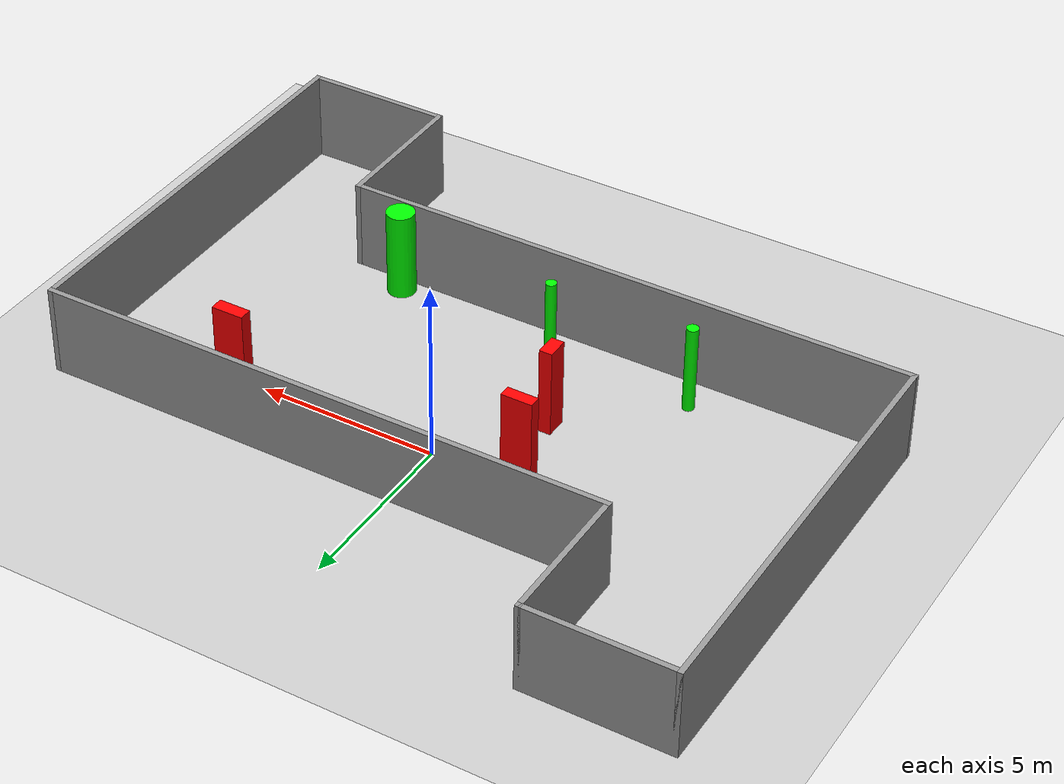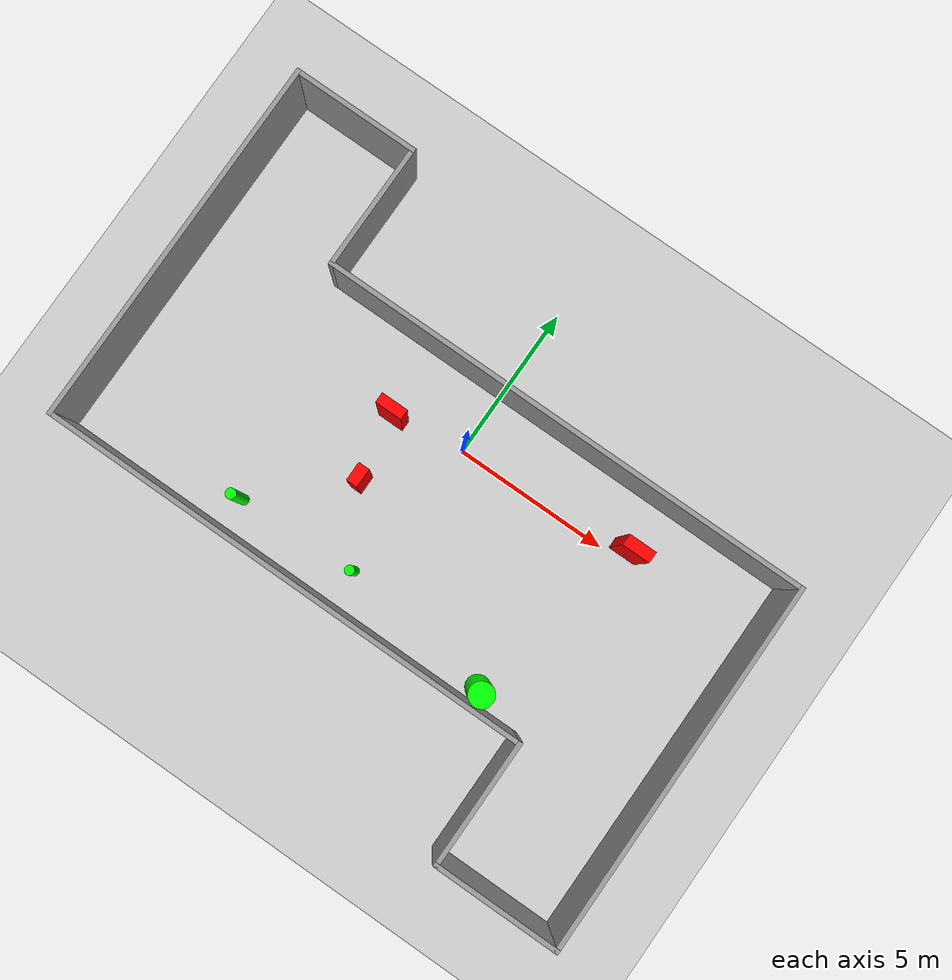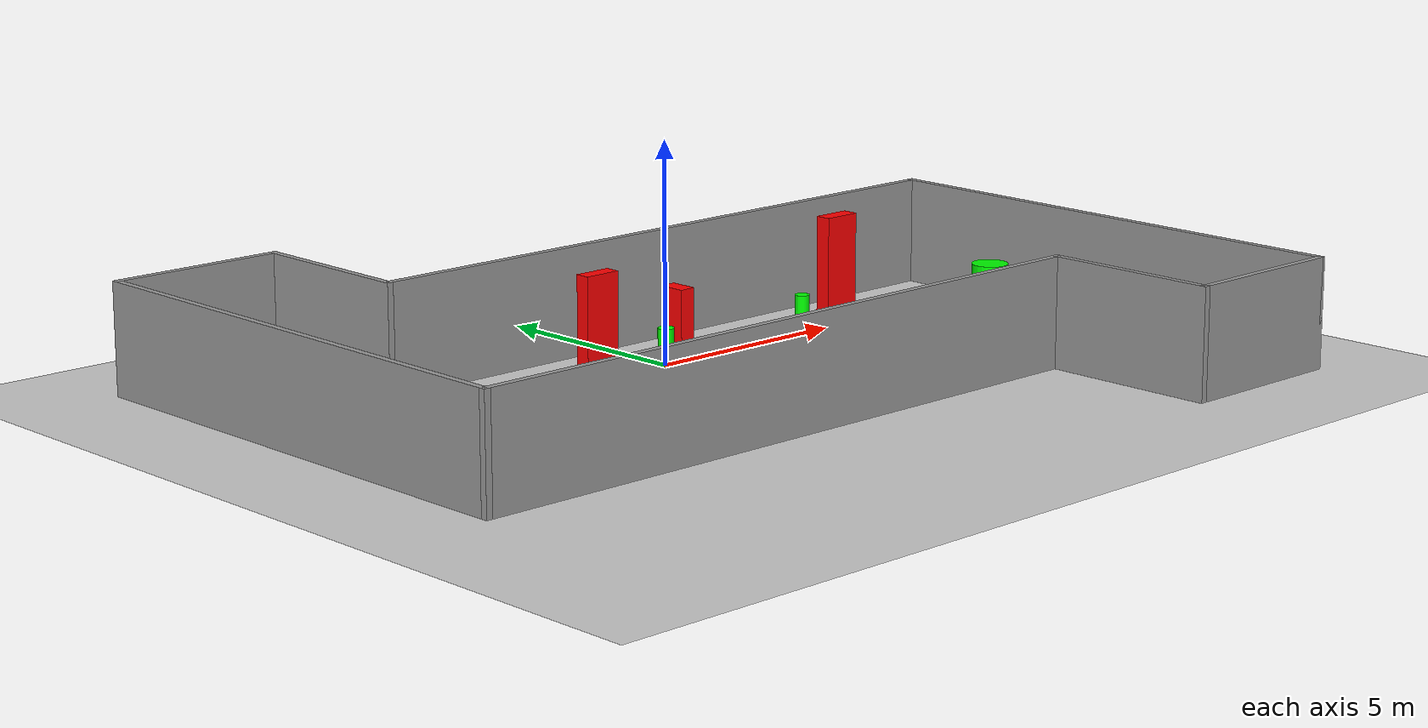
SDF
<sdf version="1.7">
 <world name="default">
  <light name="sun" type="directional">
   <pose>0 0 10 0 -0 0</pose>
   <diffuse>0.8 0.8 0.8 1</diffuse>
   <specular>0.2 0.2 0.2 1</specular>
   <attenuation>
    <range>1000</range>
    <constant>0.9</constant>
    <linear>0.01</linear>
    <quadratic>0.001</quadratic>
   </attenuation>
   <direction>-0.5 0.1 -0.9</direction>
   <spot><inner_angle>0</inner_angle><outer_angle>0</outer_angle><falloff>0</falloff></spot>
  </light>
  <model name="ground_plane">
   <static>1</static>
   <link name="link">
    <collision name="collision">
     <geometry><plane><normal>0 0 1</normal><size>100 100</size></plane></geometry>
     <surface>
      <contact><collide_bitmask>65535</collide_bitmask></contact>
      <friction><ode><mu>100</mu><mu2>50</mu2></ode></friction>
     </surface>
    </collision>
    <visual name="visual">
     <cast_shadows>0</cast_shadows>
     <geometry><plane><normal>0 0 1</normal><size>100 100</size></plane></geometry>
     <material>
      <script><uri>file://media/materials/scripts/gazebo.material</uri><name>Gazebo/Grey</name></script>
     </material>
    </visual>
   </link>
  </model>
  <gravity>0 0 -9.8</gravity>
  <magnetic_field>6e-06 2.3e-05 -4.2e-05</magnetic_field>
  <atmosphere type="adiabatic"/>
  <physics type="ode">
   <max_step_size>0.001</max_step_size>
   <real_time_factor>1</real_time_factor>
   <real_time_update_rate>1000</real_time_update_rate>
  </physics>
  <scene><ambient>0.4 0.4 0.4 1</ambient><background>0.7 0.7 0.7 1</background><shadows>1</shadows></scene>
  <spherical_coordinates>
   <surface_model>EARTH_WGS84</surface_model>
   <latitude_deg>0</latitude_deg>
   <longitude_deg>0</longitude_deg>
   <elevation>0</elevation>
   <heading_deg>0</heading_deg>
  </spherical_coordinates>
  <model name="my_base_walls">
   <link name="Wall_13">
    <collision name="Wall_13_Collision">
     <geometry><box><size>12.15 0.15 2.5</size></box></geometry>
     <pose>0 0 1.25 0 -0 0</pose>
    </collision>
    <visual name="Wall_13_Visual">
     <pose>0 0 1.25 0 -0 0</pose>
     <geometry><box><size>12.15 0.15 2.5</size></box></geometry>
     <material>
      <script><uri>file://media/materials/scripts/gazebo.material</uri><name>Gazebo/Grey</name></script>
      <ambient>1 1 1 1</ambient>
     </material>
     <meta><layer>0</layer></meta>
    </visual>
    <pose>10 -2 0 0 -0 1.5708</pose>
   </link>
   <link name="Wall_15">
    <collision name="Wall_15_Collision">
     <geometry><box><size>16.15 0.15 2.5</size></box></geometry>
     <pose>0 0 1.25 0 -0 0</pose>
    </collision>
    <visual name="Wall_15_Visual">
     <pose>0 0 1.25 0 -0 0</pose>
     <geometry><box><size>16.15 0.15 2.5</size></box></geometry>
     <material>
      <script><uri>file://media/materials/scripts/gazebo.material</uri><name>Gazebo/Grey</name></script>
      <ambient>1 1 1 1</ambient>
     </material>
     <meta><layer>0</layer></meta>
    </visual>
    <pose>2 4 0 0 -0 3.14159</pose>
   </link>
   <link name="Wall_17">
    <collision name="Wall_17_Collision">
     <geometry><box><size>4.15 0.15 2.5</size></box></geometry>
     <pose>0 0 1.25 0 -0 0</pose>
    </collision>
    <visual name="Wall_17_Visual">
     <pose>0 0 1.25 0 -0 0</pose>
     <geometry><box><size>4.15 0.15 2.5</size></box></geometry>
     <material>
      <script><uri>file://media/materials/scripts/gazebo.material</uri><name>Gazebo/Grey</name></script>
      <ambient>1 1 1 1</ambient>
     </material>
     <meta><layer>0</layer></meta>
    </visual>
    <pose>6 -6 0 0 -0 -1.5708</pose>
   </link>
   <link name="Wall_19">
    <collision name="Wall_19_Collision">
     <geometry><box><size>12.15 0.15 2.5</size></box></geometry>
     <pose>0 0 1.25 0 -0 0</pose>
    </collision>
    <visual name="Wall_19_Visual">
     <pose>0 0 1.25 0 -0 0</pose>
     <geometry><box><size>12.15 0.15 2.5</size></box></geometry>
     <material>
      <script><uri>file://media/materials/scripts/gazebo.material</uri><name>Gazebo/Grey</name></script>
      <ambient>1 1 1 1</ambient>
     </material>
     <meta><layer>0</layer></meta>
    </visual>
    <pose>-10 2 0 0 -0 1.5708</pose>
   </link>
   <link name="Wall_21">
    <collision name="Wall_21_Collision">
     <geometry><box><size>4.15 0.15 2.5</size></box></geometry>
     <pose>0 0 1.25 0 -0 0</pose>
    </collision>
    <visual name="Wall_21_Visual">
     <pose>0 0 1.25 0 -0 0</pose>
     <geometry><box><size>4.15 0.15 2.5</size></box></geometry>
     <material>
      <script><uri>file://media/materials/scripts/gazebo.material</uri><name>Gazebo/Grey</name></script>
      <ambient>1 1 1 1</ambient>
     </material>
     <meta><layer>0</layer></meta>
    </visual>
    <pose>-8 8 0 0 -0 0</pose>
   </link>
   <link name="Wall_23">
    <collision name="Wall_23_Collision">
     <geometry><box><size>4.15 0.15 2.5</size></box></geometry>
     <pose>0 0 1.25 0 -0 0</pose>
    </collision>
    <visual name="Wall_23_Visual">
     <pose>0 0 1.25 0 -0 0</pose>
     <geometry><box><size>4.15 0.15 2.5</size></box></geometry>
     <material>
      <script><uri>file://media/materials/scripts/gazebo.material</uri><name>Gazebo/Grey</name></script>
      <ambient>1 1 1 1</ambient>
     </material>
     <meta><layer>0</layer></meta>
    </visual>
    <pose>-6 6 0 0 -0 -1.5708</pose>
   </link>
   <link name="Wall_25">
    <collision name="Wall_25_Collision">
     <geometry><box><size>4.15 0.15 2.5</size></box></geometry>
     <pose>0 0 1.25 0 -0 0</pose>
    </collision>
    <visual name="Wall_25_Visual">
     <pose>0 0 1.25 0 -0 0</pose>
     <geometry><box><size>4.15 0.15 2.5</size></box></geometry>
     <material>
      <script><uri>file://media/materials/scripts/gazebo.material</uri><name>Gazebo/Grey</name></script>
      <ambient>1 1 1 1</ambient>
     </material>
     <meta><layer>0</layer></meta>
    </visual>
    <pose>8 -8 0 0 -0 0</pose>
   </link>
   <link name="Wall_9">
    <collision name="Wall_9_Collision">
     <geometry><box><size>16.15 0.15 2.5</size></box></geometry>
     <pose>0 0 1.25 0 -0 0</pose>
    </collision>
    <visual name="Wall_9_Visual">
     <pose>0 0 1.25 0 -0 0</pose>
     <geometry><box><size>16.15 0.15 2.5</size></box></geometry>
     <material>
      <script><uri>file://media/materials/scripts/gazebo.material</uri><name>Gazebo/Grey</name></script>
      <ambient>1 1 1 1</ambient>
     </material>
     <meta><layer>0</layer></meta>
    </visual>
    <pose>-2 -4 0 0 -0 3.14159</pose>
   </link>
   <static>1</static>
   <pose>-0 -2 0 0 -0 0</pose>
  </model>
  <model name="cylinder1">
   <static>1</static>
   <link name="link">
    <inertial>
     <mass>1</mass>
     <inertia><ixx>0.5</ixx><ixy>0</ixy><ixz>0</ixz><iyy>0.5</iyy><iyz>0</iyz><izz>1</izz></inertia>
    </inertial>
    <collision name="collision">
     <geometry><cylinder><radius>0.15000144860122047</radius><length>2.5</length></cylinder></geometry>
    </collision>
    <visual name="visual">
     <geometry><cylinder><radius>0.15000144860122047</radius><length>2.5</length></cylinder></geometry>
     <material>
      <ambient>0 1 0 1</ambient>
      <diffuse>0 1 0 1</diffuse>
      <specular>0.1 0.1 0.1 1</specular>
      <emissive>0 0 0 0</emissive>
     </material>
    </visual>
   </link>
   <pose>-0.5846498098671757 -4.783121618251364 1.25 0 0 0</pose>
  </model>
  <model name="cylinder2">
   <static>1</static>
   <link name="link">
    <inertial>
     <mass>1</mass>
     <inertia><ixx>0.5</ixx><ixy>0</ixy><ixz>0</ixz><iyy>0.5</iyy><iyz>0</iyz><izz>1</izz></inertia>
    </inertial>
    <collision name="collision">
     <geometry><cylinder><radius>0.3930701953225769</radius><length>2.5</length></cylinder></geometry>
    </collision>
    <visual name="visual">
     <geometry><cylinder><radius>0.3930701953225769</radius><length>2.5</length></cylinder></geometry>
     <material>
      <ambient>0 1 0 1</ambient>
      <diffuse>0 1 0 1</diffuse>
      <specular>0.1 0.1 0.1 1</specular>
      <emissive>0 0 0 0</emissive>
     </material>
    </visual>
   </link>
   <pose>4.383494219823717 -5.500628155480678 1.25 0 0 0</pose>
  </model>
  <model name="cylinder3">
   <static>1</static>
   <link name="link">
    <inertial>
     <mass>1</mass>
     <inertia><ixx>0.5</ixx><ixy>0</ixy><ixz>0</ixz><iyy>0.5</iyy><iyz>0</iyz><izz>1</izz></inertia>
    </inertial>
    <collision name="collision">
     <geometry><cylinder><radius>0.16388926388035518</radius><length>2.5</length></cylinder></geometry>
    </collision>
    <visual name="visual">
     <geometry><cylinder><radius>0.16388926388035518</radius><length>2.5</length></cylinder></geometry>
     <material>
      <ambient>0 1 0 1</ambient>
      <diffuse>0 1 0 1</diffuse>
      <specular>0.1 0.1 0.1 1</specular>
      <emissive>0 0 0 0</emissive>
     </material>
    </visual>
   </link>
   <pose>-4.52787598942999 -4.937694399466494 1.25 0 0 0</pose>
  </model>
  <model name="box1">
   <static>1</static>
   <link name="link">
    <inertial>
     <mass>1</mass>
     <inertia><ixx>0.083</ixx><ixy>0</ixy><ixz>0</ixz><iyy>0.083</iyy><iyz>0</iyz><izz>0.083</izz></inertia>
    </inertial>
    <collision name="collision">
     <geometry><box><size>0.3582241988612805 0.6124911021830357 2.5</size></box></geometry>
    </collision>
    <visual name="visual">
     <geometry><box><size>0.3582241988612805 0.6124911021830357 2.5</size></box></geometry>
     <material>
      <ambient>1 0 0 1</ambient>
      <diffuse>1 0 0 1</diffuse>
      <specular>0.1 0.1 0.1 1</specular>
      <emissive>0 0 0 0</emissive>
     </material>
    </visual>
    <sensor name="my_contact" type="contact">
     <contact><collision>box_collision</collision><topic>__default_topic__</topic></contact>
    </sensor>
   </link>
   <pose>-1.929614837460564 -2.478740126543344 1.25 0 0 0</pose>
  </model>
  <model name="box2">
   <static>1</static>
   <link name="link">
    <inertial>
     <mass>1</mass>
     <inertia><ixx>0.083</ixx><ixy>0</ixy><ixz>0</ixz><iyy>0.083</iyy><iyz>0</iyz><izz>0.083</izz></inertia>
    </inertial>
    <collision name="collision">
     <geometry><box><size>0.896221054000917 0.36595460944529157 2.5</size></box></geometry>
    </collision>
    <visual name="visual">
     <geometry><box><size>0.896221054000917 0.36595460944529157 2.5</size></box></geometry>
     <material>
      <ambient>1 0 0 1</ambient>
      <diffuse>1 0 0 1</diffuse>
      <specular>0.1 0.1 0.1 1</specular>
      <emissive>0 0 0 0</emissive>
     </material>
    </visual>
    <sensor name="my_contact" type="contact">
     <contact><collision>box_collision</collision><topic>__default_topic__</topic></contact>
    </sensor>
   </link>
   <pose>5.673434692556167 0.3311424845274491 1.25 0 0 0</pose>
  </model>
  <model name="box3">
   <static>1</static>
   <link name="link">
    <inertial>
     <mass>1</mass>
     <inertia><ixx>0.083</ixx><ixy>0</ixy><ixz>0</ixz><iyy>0.083</iyy><iyz>0</iyz><izz>0.083</izz></inertia>
    </inertial>
    <collision name="collision">
     <geometry><box><size>0.8618548821952929 0.33067052511030737 2.5</size></box></geometry>
    </collision>
    <visual name="visual">
     <geometry><box><size>0.8618548821952929 0.33067052511030737 2.5</size></box></geometry>
     <material>
      <ambient>1 0 0 1</ambient>
      <diffuse>1 0 0 1</diffuse>
      <specular>0.1 0.1 0.1 1</specular>
      <emissive>0 0 0 0</emissive>
     </material>
    </visual>
    <sensor name="my_contact" type="contact">
     <contact><collision>box_collision</collision><topic>__default_topic__</topic></contact>
    </sensor>
   </link>
   <pose>-2.2690441121092633 -0.3583387910428719 1.25 0 0 0</pose>
  </model>
 </world>
</sdf>
